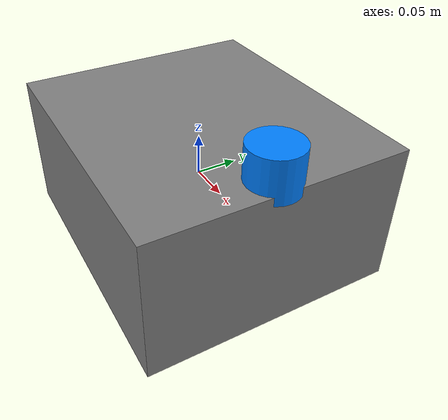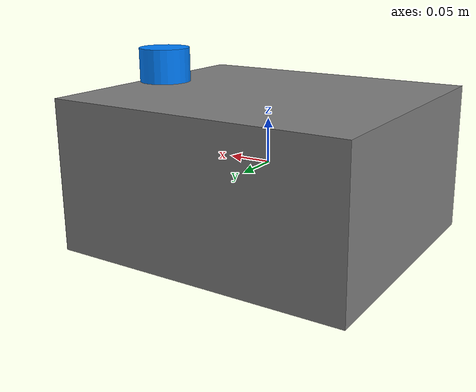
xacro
<?xml version="1.0"?>
<robot name="my_robot"
    xmlns:xacro="http://ros.org/wiki/xacro">

    <!-- Base dimensions -->
    <xacro:property name="base_width" value="0.3"/>
    <xacro:property name="base_length" value="0.34"/>
    <xacro:property name="base_height" value="0.17"/>

    <!-- Wheel dimensions -->
    <xacro:property name="wheel_radius" value="0.045"/>
    <xacro:property name="wheel_width" value="0.04"/>
    <xacro:property name="wheel_ygap" value="0.03"/>
    <xacro:property name="wheel_zoff" value="0.045"/>
    <xacro:property name="wheel_xoff" value="0.22"/>

    <!-- Laser position -->
    <xacro:property name="laser_x" value="0.145"/>
    <xacro:property name="laser_y" value="0.0"/>
    <xacro:property name="laser_z" value="0.160"/>

    <!-- Base footprint -->
    <link name="base_footprint"/>

    <!-- Base link -->
    <link name="base_link">
        <visual>
            <geometry>
                <box size="${base_length} ${base_width} ${base_height}"/>
            </geometry>
            <origin xyz="0 0 ${base_height / 2}" rpy="0 0 0"/>
            <material name="gray">
                <color rgba="0.5 0.5 0.5 1"/>
            </material>
        </visual>
        <collision>
            <geometry>
                <box size="${base_length} ${base_width} ${base_height}"/>
            </geometry>
            <origin xyz="0 0 ${base_height / 2}" rpy="0 0 0"/>
        </collision>
        <inertial>
            <mass value="5.0"/>
            <origin xyz="0 0 ${base_height / 2}" rpy="0 0 0"/>
            <inertia ixx="0.1" ixy="0.0" ixz="0.0" iyy="0.1" iyz="0.0" izz="0.1"/>
        </inertial>
    </link>
    <joint name="base_footprint_to_base_link" type="fixed">
        <parent link="base_footprint" />
        <child link="base_link" />
        <origin xyz="0.0 0.0 ${-(wheel_radius+wheel_zoff)}" rpy="0 0 0"/>
    </joint>

    <!-- Left wheel -->
    <link name="left_wheel"/>
    <joint name="left_wheel_joint" type="continuous">
        <parent link="base_link"/>
        <child link="left_wheel"/>
        <origin xyz="${-wheel_xoff} ${base_width / 2 + wheel_ygap} ${wheel_zoff}" rpy="0 0 0"/>
        <axis xyz="0 1 0"/>
    </joint>

    <!-- Right wheel -->
    <link name="right_wheel"/>
    <joint name="right_wheel_joint" type="continuous">
        <parent link="base_link"/>
        <child link="right_wheel"/>
        <origin xyz="${-wheel_xoff} ${-base_width / 2 - wheel_ygap} ${wheel_zoff}" rpy="0 0 0"/>
        <axis xyz="0 1 0"/>
    </joint>

    <!-- Laser -->
    <link name="base_scan">
        <visual>
            <geometry>
                <cylinder length="0.05" radius="0.03"/>
            </geometry>
            <origin xyz="0 0 0.025" rpy="0 0 0"/>
            <material name="blue">
                <color rgba="0.0 0.5 1.0 1"/>
            </material>
        </visual>
    </link>
    <joint name="base_link_to_base_scan" type="fixed">
        <parent link="base_link"/>
        <child link="base_scan"/>
        <origin xyz="${laser_x} ${laser_y} ${laser_z}" rpy="0 0 0"/>
    </joint>

</robot>
